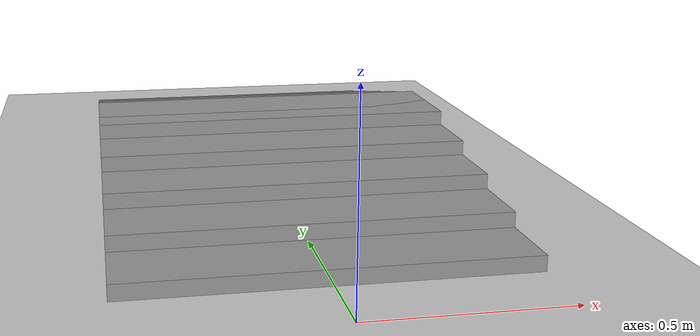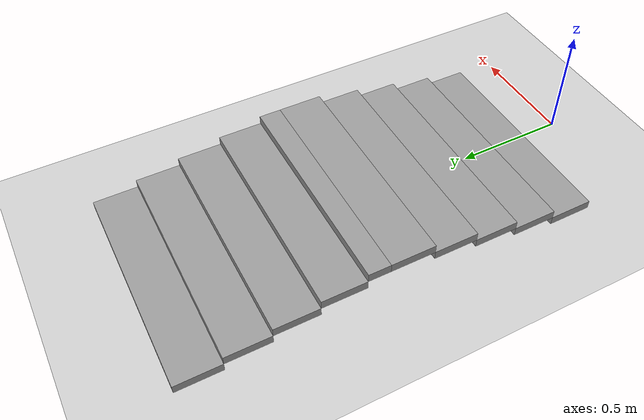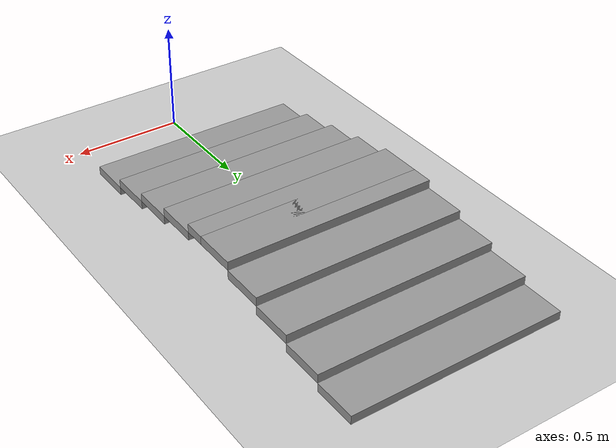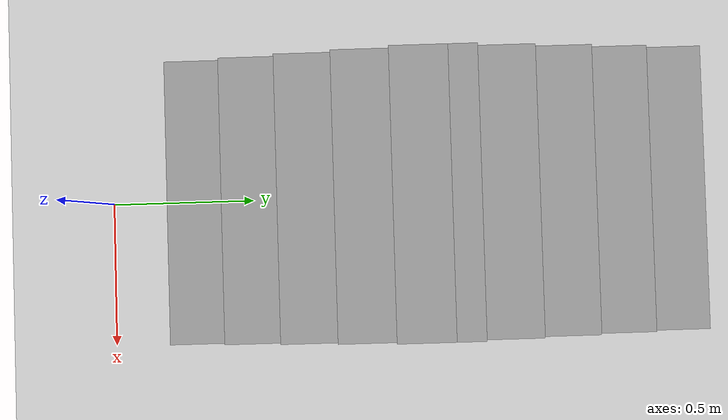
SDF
<sdf version="1.7">
 <world name="default">
  <light name="sun" type="directional">
   <pose>0 0 10 0 -0 0</pose>
   <diffuse>0.8 0.8 0.8 1</diffuse>
   <specular>0.2 0.2 0.2 1</specular>
   <attenuation>
    <range>1000</range>
    <constant>0.9</constant>
    <linear>0.01</linear>
    <quadratic>0.001</quadratic>
   </attenuation>
   <direction>-0.5 0.1 -0.9</direction>
   <spot><inner_angle>0</inner_angle><outer_angle>0</outer_angle><falloff>0</falloff></spot>
  </light>
  <model name="ground_plane">
   <static>1</static>
   <link name="link">
    <collision name="collision">
     <geometry><plane><normal>0 0 1</normal><size>100 100</size></plane></geometry>
     <surface>
      <contact><collide_bitmask>65535</collide_bitmask></contact>
      <friction><ode><mu>100</mu><mu2>50</mu2></ode></friction>
     </surface>
    </collision>
    <visual name="visual">
     <cast_shadows>0</cast_shadows>
     <geometry><plane><normal>0 0 1</normal><size>100 100</size></plane></geometry>
     <material>
      <script><uri>file://media/materials/scripts/gazebo.material</uri><name>Gazebo/Grey</name></script>
     </material>
    </visual>
   </link>
  </model>
  <gravity>0 0 -9.8</gravity>
  <magnetic_field>6e-06 2.3e-05 -4.2e-05</magnetic_field>
  <atmosphere type="adiabatic"/>
  <physics type="ode">
   <max_step_size>0.001</max_step_size>
   <real_time_factor>1</real_time_factor>
   <real_time_update_rate>1000</real_time_update_rate>
  </physics>
  <scene><ambient>0.4 0.4 0.4 1</ambient><background>0.7 0.7 0.7 1</background><shadows>1</shadows></scene>
  <spherical_coordinates>
   <surface_model>EARTH_WGS84</surface_model>
   <latitude_deg>0</latitude_deg>
   <longitude_deg>0</longitude_deg>
   <elevation>0</elevation>
   <heading_deg>0</heading_deg>
  </spherical_coordinates>
  <model name="Untitled">
   <pose>0 1.05 0 0 -0 0</pose>
   <link name="Stairs_1">
    <visual name="Stairs_1_Visual_0">
     <pose>0 -0.75 0.02 0 -0 -3.14159</pose>
     <geometry><box><size>1 0.2 0.04</size></box></geometry>
     <material>
      <script><uri>file://media/materials/scripts/gazebo.material</uri><name>Gazebo/Grey</name></script>
      <ambient>1 1 1 1</ambient>
     </material>
     <meta><layer>0</layer></meta>
    </visual>
    <collision name="Stairs_1_Collision_0">
     <geometry><box><size>1 0.2 0.04</size></box></geometry>
     <pose>0 -0.75 0.02 0 -0 -3.14159</pose>
    </collision>
    <visual name="Stairs_1_Visual_1">
     <pose>0 -0.55 0.06 0 -0 -3.14159</pose>
     <geometry><box><size>1 0.2 0.04</size></box></geometry>
     <material>
      <script><uri>file://media/materials/scripts/gazebo.material</uri><name>Gazebo/Grey</name></script>
      <ambient>1 1 1 1</ambient>
     </material>
     <meta><layer>0</layer></meta>
    </visual>
    <collision name="Stairs_1_Collision_1">
     <geometry><box><size>1 0.2 0.04</size></box></geometry>
     <pose>0 -0.55 0.06 0 -0 -3.14159</pose>
    </collision>
    <visual name="Stairs_1_Visual_2">
     <pose>0 -0.35 0.1 0 -0 -3.14159</pose>
     <geometry><box><size>1 0.2 0.04</size></box></geometry>
     <material>
      <script><uri>file://media/materials/scripts/gazebo.material</uri><name>Gazebo/Grey</name></script>
      <ambient>1 1 1 1</ambient>
     </material>
     <meta><layer>0</layer></meta>
    </visual>
    <collision name="Stairs_1_Collision_2">
     <geometry><box><size>1 0.2 0.04</size></box></geometry>
     <pose>0 -0.35 0.1 0 -0 -3.14159</pose>
    </collision>
    <visual name="Stairs_1_Visual_3">
     <pose>-0 -0.15 0.14 0 -0 -3.14159</pose>
     <geometry><box><size>1 0.2 0.04</size></box></geometry>
     <material>
      <script><uri>file://media/materials/scripts/gazebo.material</uri><name>Gazebo/Grey</name></script>
      <ambient>1 1 1 1</ambient>
     </material>
     <meta><layer>0</layer></meta>
    </visual>
    <collision name="Stairs_1_Collision_3">
     <geometry><box><size>1 0.2 0.04</size></box></geometry>
     <pose>-0 -0.15 0.14 0 -0 -3.14159</pose>
    </collision>
    <visual name="Stairs_1_Visual_4">
     <pose>-0 0.05 0.18 0 -0 -3.14159</pose>
     <geometry><box><size>1 0.2 0.04</size></box></geometry>
     <material>
      <script><uri>file://media/materials/scripts/gazebo.material</uri><name>Gazebo/Grey</name></script>
      <ambient>1 1 1 1</ambient>
     </material>
     <meta><layer>0</layer></meta>
    </visual>
    <collision name="Stairs_1_Collision_4">
     <geometry><box><size>1 0.2 0.04</size></box></geometry>
     <pose>-0 0.05 0.18 0 -0 -3.14159</pose>
    </collision>
   </link>
   <link name="Stairs_3">
    <visual name="Stairs_3_Visual_0">
     <pose>0 0.95 0.02 0 -0 0</pose>
     <geometry><box><size>1 0.2 0.04</size></box></geometry>
     <material>
      <script><uri>file://media/materials/scripts/gazebo.material</uri><name>Gazebo/Grey</name></script>
      <ambient>1 1 1 1</ambient>
     </material>
     <meta><layer>0</layer></meta>
    </visual>
    <collision name="Stairs_3_Collision_0">
     <geometry><box><size>1 0.2 0.04</size></box></geometry>
     <pose>0 0.95 0.02 0 -0 0</pose>
    </collision>
    <visual name="Stairs_3_Visual_1">
     <pose>0 0.75 0.06 0 -0 0</pose>
     <geometry><box><size>1 0.2 0.04</size></box></geometry>
     <material>
      <script><uri>file://media/materials/scripts/gazebo.material</uri><name>Gazebo/Grey</name></script>
      <ambient>1 1 1 1</ambient>
     </material>
     <meta><layer>0</layer></meta>
    </visual>
    <collision name="Stairs_3_Collision_1">
     <geometry><box><size>1 0.2 0.04</size></box></geometry>
     <pose>0 0.75 0.06 0 -0 0</pose>
    </collision>
    <visual name="Stairs_3_Visual_2">
     <pose>0 0.55 0.1 0 -0 0</pose>
     <geometry><box><size>1 0.2 0.04</size></box></geometry>
     <material>
      <script><uri>file://media/materials/scripts/gazebo.material</uri><name>Gazebo/Grey</name></script>
      <ambient>1 1 1 1</ambient>
     </material>
     <meta><layer>0</layer></meta>
    </visual>
    <collision name="Stairs_3_Collision_2">
     <geometry><box><size>1 0.2 0.04</size></box></geometry>
     <pose>0 0.55 0.1 0 -0 0</pose>
    </collision>
    <visual name="Stairs_3_Visual_3">
     <pose>0 0.35 0.14 0 -0 0</pose>
     <geometry><box><size>1 0.2 0.04</size></box></geometry>
     <material>
      <script><uri>file://media/materials/scripts/gazebo.material</uri><name>Gazebo/Grey</name></script>
      <ambient>1 1 1 1</ambient>
     </material>
     <meta><layer>0</layer></meta>
    </visual>
    <collision name="Stairs_3_Collision_3">
     <geometry><box><size>1 0.2 0.04</size></box></geometry>
     <pose>0 0.35 0.14 0 -0 0</pose>
    </collision>
    <visual name="Stairs_3_Visual_4">
     <pose>0 0.15 0.18 0 -0 0</pose>
     <geometry><box><size>1 0.2 0.04</size></box></geometry>
     <material>
      <script><uri>file://media/materials/scripts/gazebo.material</uri><name>Gazebo/Grey</name></script>
      <ambient>1 1 1 1</ambient>
     </material>
     <meta><layer>0</layer></meta>
    </visual>
    <collision name="Stairs_3_Collision_4">
     <geometry><box><size>1 0.2 0.04</size></box></geometry>
     <pose>0 0.15 0.18 0 -0 0</pose>
    </collision>
   </link>
   <static>1</static>
  </model>
 </world>
</sdf>
